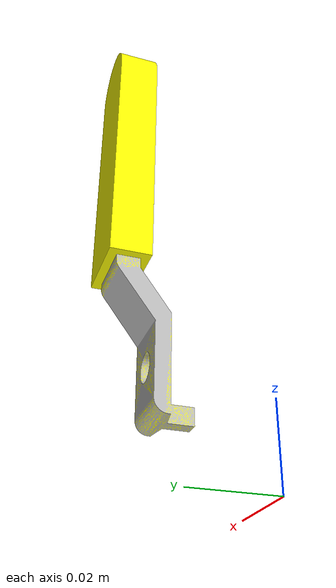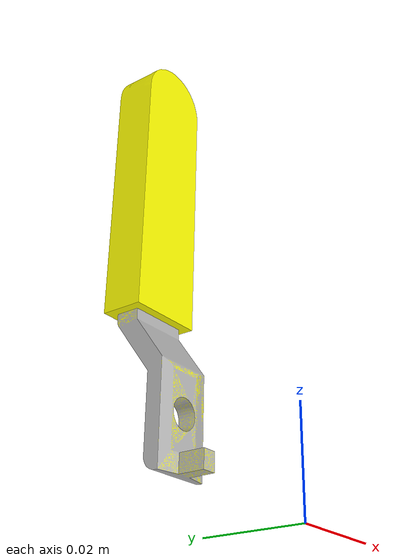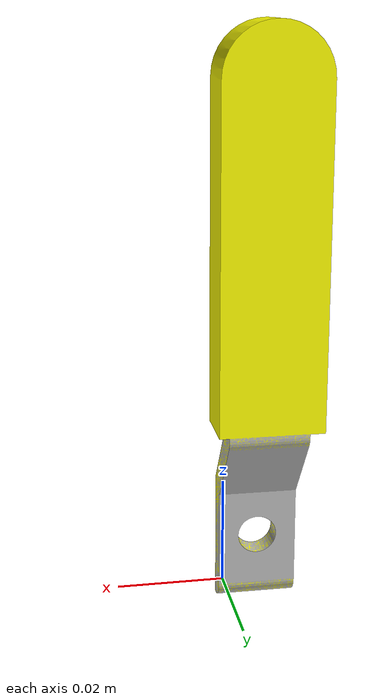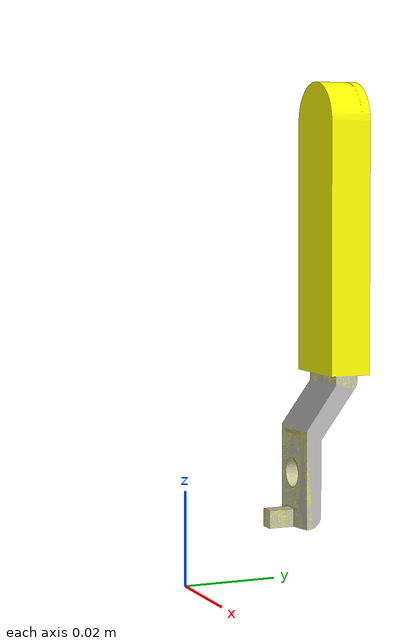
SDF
<?xml version="1.0" ?>
<sdf version="1.5">
  <model name="ball_valve">
    <link name="handle">
      <pose>0 0.0275 0.02222 -1.5708 3.1415 0</pose>
      <inertial>
        <mass>0.0802</mass>
        <pose>0.0 0.0435 0.0055 0 0 0</pose>
        <inertia>
          <ixx>0.000038</ixx>
          <iyy>0.000004</iyy>
          <izz>0.00004</izz>
          <ixy>0.0</ixy>
          <ixz>0.0</ixz>
          <iyz>0.0</iyz>
        </inertia>
      </inertial>
      <collision name="collision">
        <geometry>
          <mesh>
            <uri>model://drc_practice_ball_valve/meshes/ball_valve.dae</uri>
          </mesh>
        </geometry>
        <surface>
          <bounce>
            <restitution_coefficient>0.01</restitution_coefficient>
            <threshold>5.0</threshold>
          </bounce>
          <friction>
            <ode>
              <mu>5</mu>
              <mu2>5</mu2>
            </ode>
          </friction>
          <contact>
            <ode>
              <soft_cfm>0.01</soft_cfm>
              <!--"sponginess", 0.0=hard-->
              <kp>10000.0</kp>
              <kd>1000.0</kd>
              <max_vel>0.01</max_vel>
              <min_depth>0.001</min_depth>
            </ode>
          </contact>
        </surface>
      </collision>
      <visual name="visual">
        <geometry>
          <mesh>
            <uri>model://drc_practice_ball_valve/meshes/ball_valve.dae</uri>
          </mesh>
        </geometry>
      </visual>
    </link>
    <joint name="ball" type="revolute">
      <parent>world</parent>
      <child>handle</child>
      <axis>
        <xyz>0 1 0</xyz>
        <limit>
          <lower>0</lower>
          <upper>1.58</upper>
        </limit>
        <dynamics>
          <!--velocity dependent viscous damping coefficient of the joint-->
          <damping>0.3</damping>
          <!--default 0, static friction value of the joint-->
          <friction>10</friction>
        </dynamics>
        <use_parent_model_frame>true</use_parent_model_frame>
      </axis>
      <physics>
        <ode>
          <cfm_damping>1</cfm_damping>
        </ode>
      </physics>
    </joint>
  </model>
</sdf>
